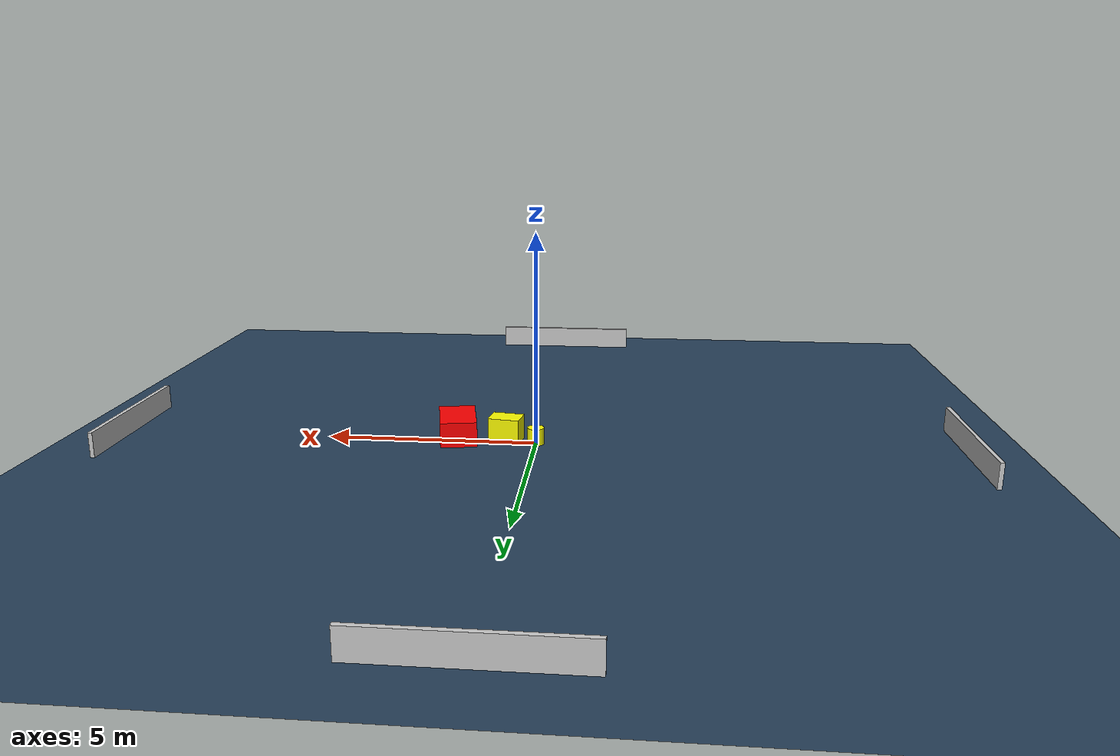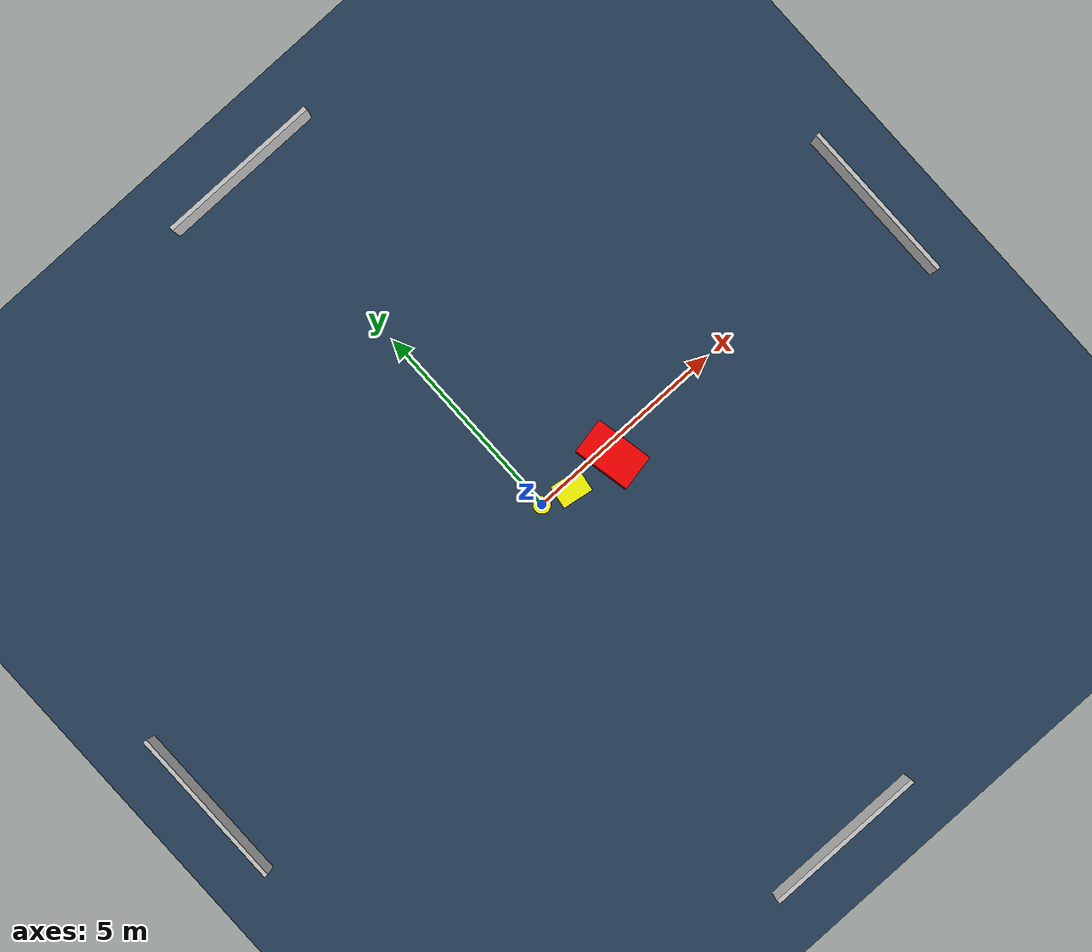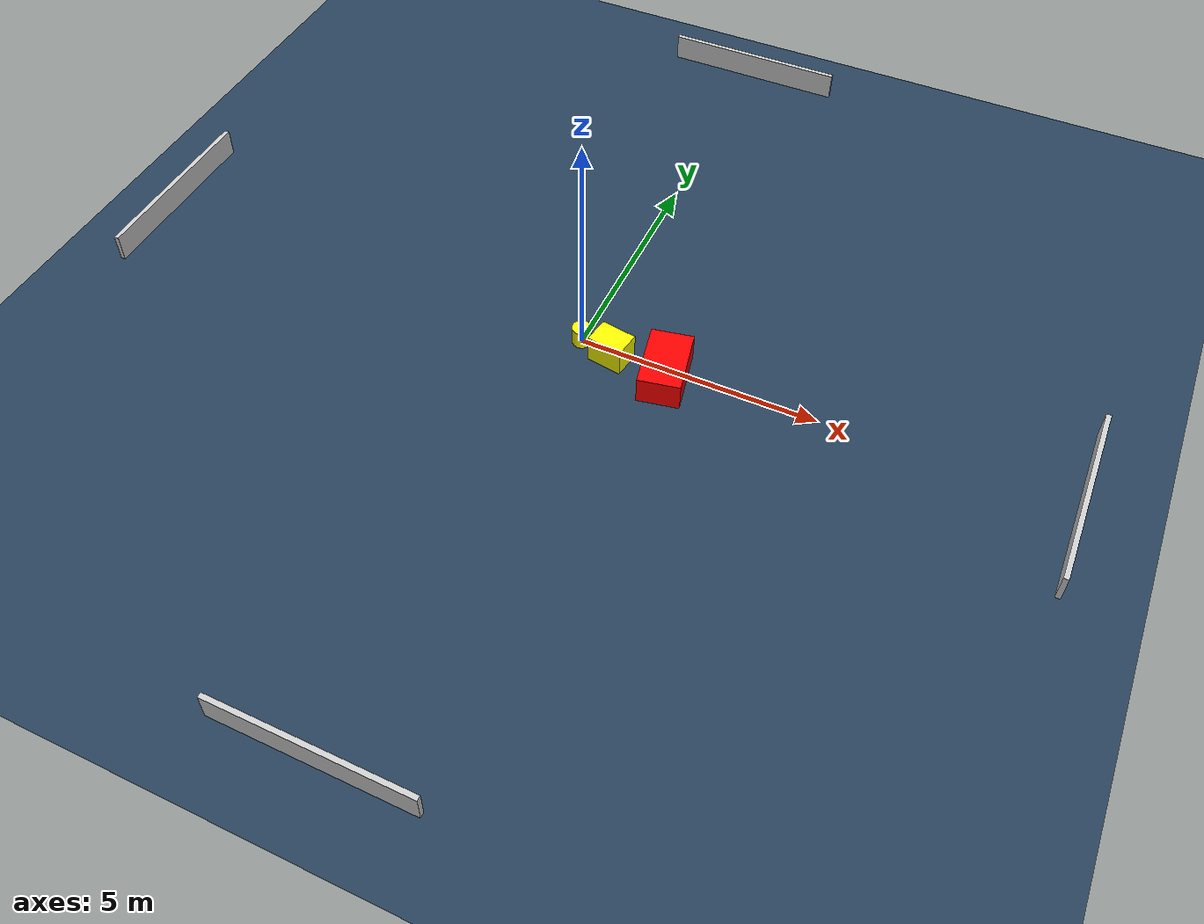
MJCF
<?xml version="1.0" ?>
<mujoco model="generated_environment">
  <option timestep="0.01" integrator="RK4" cone="elliptic"/>
  <default>
    <geom density="1"/>
  </default>
  <asset>
    <texture builtin="gradient" height="3072" name="skybox" rgb1="0.3 0.5 0.7" rgb2="0 0 0" type="skybox" width="512"/>
    <texture builtin="checker" height="300" name="groundplane" rgb1="0.2 0.3 0.4" rgb2="0.1 0.2 0.3" type="2d" width="300"/>
    <material name="groundplane" reflectance="0.2" texrepeat="5 5" texture="groundplane"/>
  </asset>
  <worldbody>
    <light dir="0 0 -1" directional="true" pos="0 0 1.5"/>
    <geom condim="3" friction="0.5 0.005 0.001" material="groundplane" name="floor" pos="0 0 0" size="0 0 0.05" type="plane"/>
    <body name="walls">
      <geom name="wall_1" condim="4" pos="-10.0 0.0 0.3" rgba="0.800000011920929 0.800000011920929 0.800000011920929 1.0" size="0.05 2.0 0.3" type="box"/>
      <geom name="wall_2" condim="4" pos="10.0 0.0 0.3" rgba="0.800000011920929 0.800000011920929 0.800000011920929 1.0" size="0.05 2.0 0.3" type="box"/>
      <geom name="wall_3" condim="4" pos="0.0 -10.0 0.3" rgba="0.800000011920929 0.800000011920929 0.800000011920929 1.0" size="2.0 0.05 0.3" type="box"/>
      <geom name="wall_4" condim="4" pos="0.0 10.0 0.3" rgba="0.800000011920929 0.800000011920929 0.800000011920929 1.0" size="2.0 0.05 0.3" type="box"/>
    </body>
    <body name="robot">
      <joint name="joint_x" type="slide" pos="0 0 0" axis="1 0 0"/>
      <joint name="joint_y" type="slide" pos="0 0 0" axis="0 1 0"/>
      <geom name="robot" type="cylinder" pos="0.0 0.0 0.2" size="0.2 0.2 0.0" mass="5.0" friction="1.0 0.005 0.0001" condim="4" rgba="1.0 1.0 0.0 1.0"/>
    </body>
    <body name="obstacle_1_movable">
      <geom name="obstacle_1_movable" condim="4" pos="0.7277923686075919 -0.16653783514547796 0.3" euler="0 0 351.27363891593757" friction="0.0 0.005 0.001" rgba="1.0 1.0 0.0 1.0" size="0.3749930579151154 0.27794945370704155 0.3" type="box" mass="0.1"/>
      <joint type="free"/>
    </body>
    <body name="obstacle_2_static">
      <geom name="obstacle_2_static" condim="4" pos="1.9119941806567677 -0.21771920770524425 0.3" euler="0 0 191.11794802560715" friction="0.0 0.005 0.001" rgba="1.0 0.0 0.0 1.0" size="0.43514311131169675 0.697737651816138 0.3" type="box"/>
    </body>
  </worldbody>
  <actuator>
    <motor name="actuator_x" joint="joint_x" gear="1" ctrlrange="-1 1"/>
    <motor name="actuator_y" joint="joint_y" gear="1" ctrlrange="-1 1"/>
  </actuator>
</mujoco>
